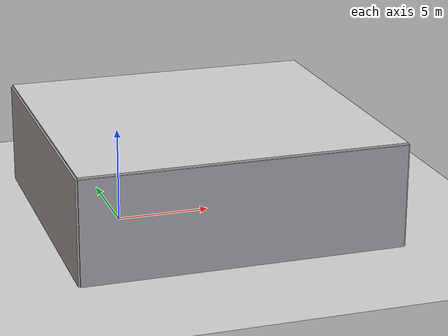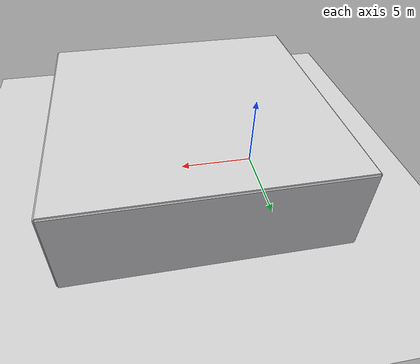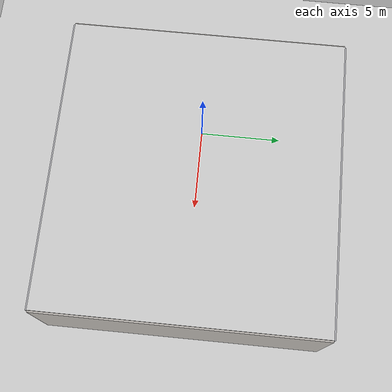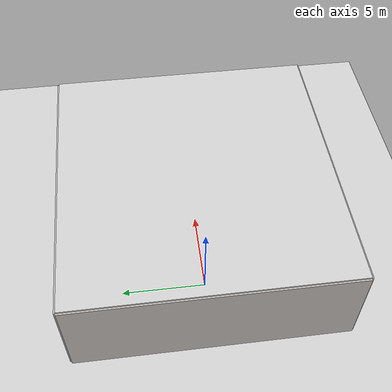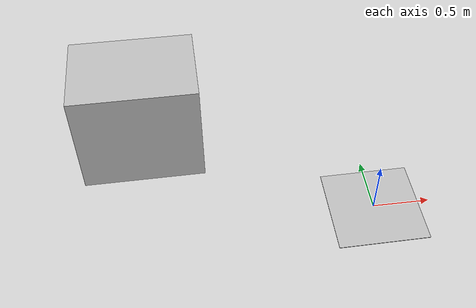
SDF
<sdf version="1.6">
 <world name="default">
  <physics type="ode">
   <max_step_size>0.001</max_step_size>
   <real_time_factor>1</real_time_factor>
   <real_time_update_rate>1000</real_time_update_rate>
  </physics>
  <gravity>0 0 -9.8</gravity>
  <scene>
   <ambient>0.4 0.4 0.4 1</ambient>
   <background>0.7 0.7 0.7 1</background>
   <shadows>1</shadows>
   <fog><type>none</type></fog>
  </scene>
  <spherical_coordinates>
   <surface_model>EARTH_WGS84</surface_model>
   <latitude_deg>0</latitude_deg>
   <longitude_deg>0</longitude_deg>
   <elevation>0</elevation>
   <heading_deg>0</heading_deg>
  </spherical_coordinates>
  <magnetic_field>6e-06 2.3e-05 -4.2e-05</magnetic_field>
  <include><uri>model://sun</uri></include>
  <include><uri>model://ground_plane</uri></include>
  <include>
   <uri>model://landing_h_80cm</uri>
   <name>landing_h</name>
   <pose>0.0 -0.0 0.0 0.0 0.0 -1.5707963267948966</pose>
  </include>
  <include>
   <uri>model://landing_h_80cm</uri>
   <name>landing_h_clone</name>
   <pose>8.5 -4.2 0.0 0.0 0.0 -1.5707963267948966</pose>
  </include>
  <model name="indoor_context">
   <static>true</static>
   <link name="west_hall">
    <pose>4.5 8.0 2.75 0.0 0.0 0.0</pose>
    <collision name="west_hall_collision"><geometry><box><size>17.0 0.2 5.5</size></box></geometry></collision>
    <visual name="west_hall_visual">
     <geometry><box><size>17.0 0.2 5.5</size></box></geometry>
     <material><ambient>.7 .7 .72 1</ambient><diffuse>.7 .7 .72 1</diffuse></material>
    </visual>
   </link>
   <link name="east_hall">
    <pose>4.5 -8.0 2.75 0.0 0.0 0.0</pose>
    <collision name="east_hall_collision"><geometry><box><size>17.0 0.2 5.5</size></box></geometry></collision>
    <visual name="east_hall_visual">
     <geometry><box><size>17.0 0.2 5.5</size></box></geometry>
     <material><ambient>.7 .7 .72 1</ambient><diffuse>.7 .7 .72 1</diffuse></material>
    </visual>
   </link>
   <link name="south_hall">
    <pose>-4.0 -0.0 2.75 0.0 0.0 0.0</pose>
    <collision name="south_hall_collision"><geometry><box><size>0.2 16.0 5.5</size></box></geometry></collision>
    <visual name="south_hall_visual">
     <geometry><box><size>0.2 16.0 5.5</size></box></geometry>
     <material><ambient>.72 .70 .68 1</ambient><diffuse>.72 .70 .68 1</diffuse></material>
    </visual>
   </link>
   <link name="north_hall">
    <pose>13.0 -0.0 2.75 0.0 0.0 0.0</pose>
    <collision name="north_hall_collision"><geometry><box><size>0.2 16.0 5.5</size></box></geometry></collision>
    <visual name="north_hall_visual">
     <geometry><box><size>0.2 16.0 5.5</size></box></geometry>
     <material><ambient>.72 .70 .68 1</ambient><diffuse>.72 .70 .68 1</diffuse></material>
    </visual>
   </link>
   <link name="hall_ceiling">
    <pose>4.5 -0.0 5.5 0.0 0.0 0.0</pose>
    <collision name="hall_ceiling_collision">
     <geometry><box><size>17.0 16.0 0.2</size></box></geometry>
    </collision>
    <visual name="hall_ceiling_visual">
     <geometry><box><size>17.0 16.0 0.2</size></box></geometry>
     <material><ambient>.8 .8 .8 1</ambient><diffuse>.8 .8 .8 1</diffuse></material>
    </visual>
   </link>
   <link name="pillar_0">
    <pose>0.0 6.5 2.75 0.0 0.0 0.0</pose>
    <collision name="pillar_0_collision"><geometry><box><size>0.45 0.45 5.5</size></box></geometry></collision>
    <visual name="pillar_0_visual">
     <geometry><box><size>0.45 0.45 5.5</size></box></geometry>
     <material><ambient>.5 .5 .52 1</ambient><diffuse>.5 .5 .52 1</diffuse></material>
    </visual>
   </link>
   <link name="pillar_1">
    <pose>6.0 6.5 2.75 0.0 0.0 0.0</pose>
    <collision name="pillar_1_collision"><geometry><box><size>0.45 0.45 5.5</size></box></geometry></collision>
    <visual name="pillar_1_visual">
     <geometry><box><size>0.45 0.45 5.5</size></box></geometry>
     <material><ambient>.5 .5 .52 1</ambient><diffuse>.5 .5 .52 1</diffuse></material>
    </visual>
   </link>
   <link name="pillar_2">
    <pose>11.0 6.5 2.75 0.0 0.0 0.0</pose>
    <collision name="pillar_2_collision"><geometry><box><size>0.45 0.45 5.5</size></box></geometry></collision>
    <visual name="pillar_2_visual">
     <geometry><box><size>0.45 0.45 5.5</size></box></geometry>
     <material><ambient>.5 .5 .52 1</ambient><diffuse>.5 .5 .52 1</diffuse></material>
    </visual>
   </link>
   <link name="pillar_3">
    <pose>0.0 -6.5 2.75 0.0 0.0 0.0</pose>
    <collision name="pillar_3_collision"><geometry><box><size>0.45 0.45 5.5</size></box></geometry></collision>
    <visual name="pillar_3_visual">
     <geometry><box><size>0.45 0.45 5.5</size></box></geometry>
     <material><ambient>.5 .5 .52 1</ambient><diffuse>.5 .5 .52 1</diffuse></material>
    </visual>
   </link>
   <link name="pillar_4">
    <pose>6.0 -6.5 2.75 0.0 0.0 0.0</pose>
    <collision name="pillar_4_collision"><geometry><box><size>0.45 0.45 5.5</size></box></geometry></collision>
    <visual name="pillar_4_visual">
     <geometry><box><size>0.45 0.45 5.5</size></box></geometry>
     <material><ambient>.5 .5 .52 1</ambient><diffuse>.5 .5 .52 1</diffuse></material>
    </visual>
   </link>
   <link name="pillar_5">
    <pose>11.0 -6.5 2.75 0.0 0.0 0.0</pose>
    <collision name="pillar_5_collision"><geometry><box><size>0.45 0.45 5.5</size></box></geometry></collision>
    <visual name="pillar_5_visual">
     <geometry><box><size>0.45 0.45 5.5</size></box></geometry>
     <material><ambient>.5 .5 .52 1</ambient><diffuse>.5 .5 .52 1</diffuse></material>
    </visual>
   </link>
   <link name="desk_0">
    <pose>8.0 5.8 0.7 0.0 0.0 0.0</pose>
    <collision name="desk_0_collision"><geometry><box><size>1.6 0.65 1.4</size></box></geometry></collision>
    <visual name="desk_0_visual">
     <geometry><box><size>1.6 0.65 1.4</size></box></geometry>
     <material><ambient>.5 .4 .3 1</ambient><diffuse>.5 .4 .3 1</diffuse></material>
    </visual>
   </link>
   <link name="desk_1">
    <pose>8.0 -5.8 0.7 0.0 0.0 0.0</pose>
    <collision name="desk_1_collision"><geometry><box><size>1.6 0.65 1.4</size></box></geometry></collision>
    <visual name="desk_1_visual">
     <geometry><box><size>1.6 0.65 1.4</size></box></geometry>
     <material><ambient>.5 .4 .3 1</ambient><diffuse>.5 .4 .3 1</diffuse></material>
    </visual>
   </link>
   <link name="outside_box_0">
    <pose>2.0 5.8 0.75 0.0 0.0 0.0</pose>
    <collision name="collision"><geometry><box><size>1.1 0.8 1.5</size></box></geometry></collision>
    <visual name="visual"><geometry><box><size>1.1 0.8 1.5</size></box></geometry></visual>
   </link>
   <link name="outside_box_1">
    <pose>3.0 -5.8 1.0 0.0 0.0 0.0</pose>
    <collision name="collision"><geometry><box><size>1.1 0.8 2.0</size></box></geometry></collision>
    <visual name="visual"><geometry><box><size>1.1 0.8 2.0</size></box></geometry></visual>
   </link>
   <link name="outside_box_2">
    <pose>-2.0 1.0 0.5 0.0 0.0 0.0</pose>
    <collision name="collision"><geometry><box><size>1.1 0.8 1.0</size></box></geometry></collision>
    <visual name="visual"><geometry><box><size>1.1 0.8 1.0</size></box></geometry></visual>
   </link>
   <link name="outside_box_3">
    <pose>11.0 -1.0 0.9 0.0 0.0 0.0</pose>
    <collision name="collision"><geometry><box><size>1.1 0.8 1.8</size></box></geometry></collision>
    <visual name="visual"><geometry><box><size>1.1 0.8 1.8</size></box></geometry></visual>
   </link>
  </model>
 </world>
</sdf>

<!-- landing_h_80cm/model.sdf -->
<sdf version="1.7">
  <model name="landing_h_80cm">
    <static>true</static>
    <link name="link">
      <pose>0 0 0.0025 0 0 0</pose>
      <collision name="collision">
        <geometry>
          <box><size>0.8 0.8 0.005</size></box>
        </geometry>
      </collision>
      <visual name="visual">
        <geometry>
          <box><size>0.8 0.8 0.005</size></box>
        </geometry>
        <material>
          <script>
            <uri>model://landing_h/materials/scripts/</uri>
            <uri>model://landing_h/materials/textures/</uri>
            <name>Mark/LandingH</name>
          </script>
        </material>
        <cast_shadows>true</cast_shadows>
        <receive_shadows>true</receive_shadows>
      </visual>
    </link>
  </model>
</sdf>
